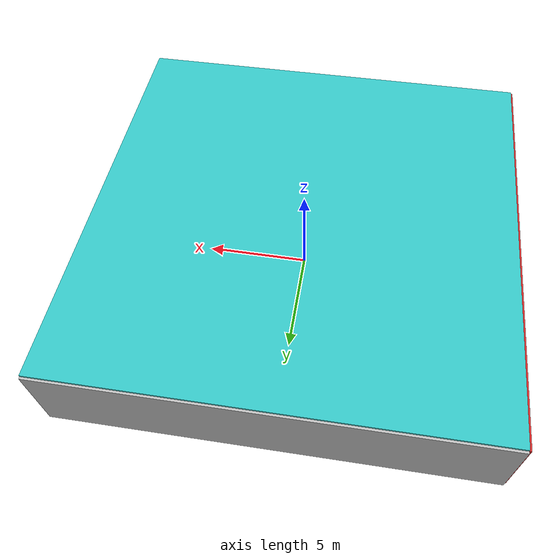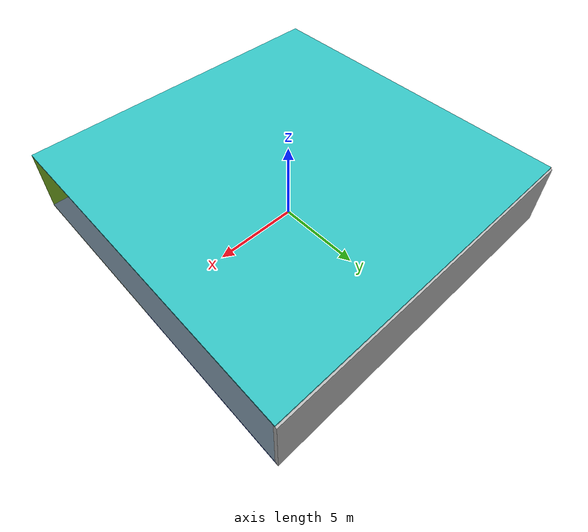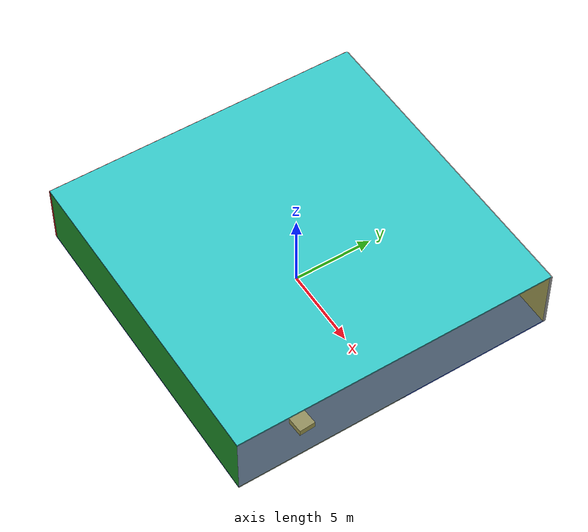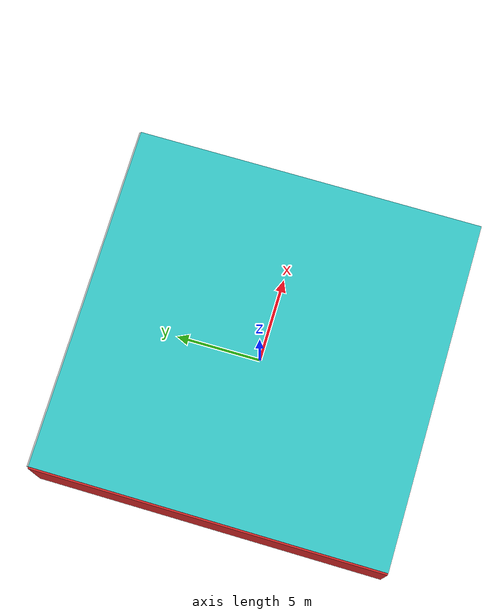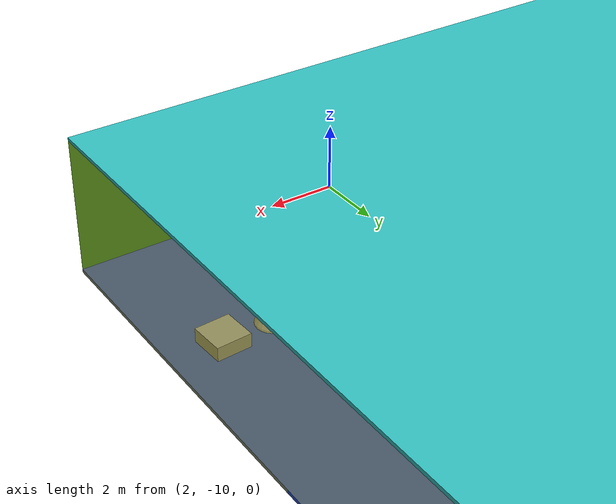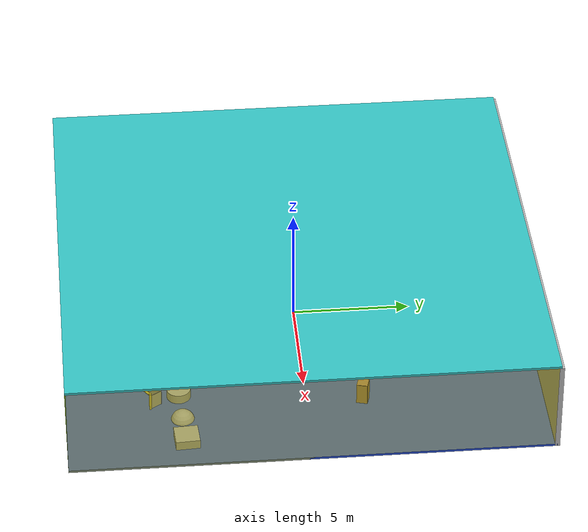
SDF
<sdf version="1.4">
 <world name="default">
  <physics type="ode">
   <max_step_size>0.001</max_step_size>
   <real_time_factor>1</real_time_factor>
   <real_time_update_rate>1000</real_time_update_rate>
   <gravity>0 0 -9.8</gravity>
  </physics>
  <scene><ambient>0.4 0.4 0.4 1</ambient><background>0.7 0.7 0.7 1</background><shadows>1</shadows></scene>
  <model name="Surrounding">
   <static>1</static>
   <link name="Ceiling">
    <collision name="Ceiling_Collision"><geometry><box><size>20 20 0.1</size></box></geometry></collision>
    <visual name="Ceiling_Visual">
     <geometry><box><size>20 20 0.1</size></box></geometry>
     <material>
      <script><uri>file://media/materials/scripts/gazebo.material</uri><name>Gazebo/Turquoise</name></script>
     </material>
    </visual>
    <pose>0 0 4.05 0 0 0</pose>
   </link>
   <link name="Wall_South">
    <collision name="Wall_South_Collision">
     <geometry><box><size>20 0 4</size></box></geometry>
     <pose>0 0 2 0 -0 0</pose>
    </collision>
    <visual name="Wall_South_Visual">
     <pose>0 0 2 0 -0 0</pose>
     <geometry><box><size>20 0 4</size></box></geometry>
     <material>
      <script><uri>file://media/materials/scripts/gazebo.material</uri><name>Gazebo/GreenGlow</name></script>
     </material>
    </visual>
    <velocity_decay><linear>0</linear><angular>0</angular></velocity_decay>
    <pose>0 -10 0 0 -0 0</pose>
   </link>
   <link name="Wall_East">
    <collision name="Wall_21_Collision">
     <geometry><box><size>20 0 4</size></box></geometry>
     <pose>0 0 2 0 -0 0</pose>
    </collision>
    <visual name="Wall_21_Visual">
     <pose>0 0 2 0 -0 0</pose>
     <geometry><box><size>20 0 4</size></box></geometry>
     <material>
      <script>
       <uri>file://media/materials/scripts/gazebo.material</uri>
       <name>Gazebo/YellowTransparent</name>
      </script>
     </material>
    </visual>
    <velocity_decay><linear>0</linear><angular>0</angular></velocity_decay>
    <pose>10 0 0 0 -0 1.5708</pose>
   </link>
   <link name="Wall_North">
    <collision name="Wall_22_Collision">
     <geometry><box><size>20 0.2 4</size></box></geometry>
     <pose>0 0 2 0 -0 0</pose>
    </collision>
    <visual name="Wall_22_Visual">
     <pose>0 0 2 0 -0 0</pose>
     <geometry><box><size>20 0.2 4</size></box></geometry>
     <material>
      <script><uri>file://media/materials/scripts/gazebo.material</uri><name>Gazebo/LightOn</name></script>
     </material>
    </visual>
    <velocity_decay><linear>0</linear><angular>0</angular></velocity_decay>
    <pose>0 10 0 0 -0 0</pose>
   </link>
   <link name="Wall_West">
    <collision name="Wall_23_Collision">
     <geometry><box><size>20 0.2 4</size></box></geometry>
     <pose>0 0 2 0 -0 0</pose>
    </collision>
    <visual name="Wall_23_Visual">
     <pose>0 0 2 0 -0 0</pose>
     <geometry><box><size>20 0.2 4</size></box></geometry>
     <material>
      <script><uri>file://media/materials/scripts/gazebo.material</uri><name>Gazebo/Red</name></script>
     </material>
    </visual>
    <velocity_decay><linear>0</linear><angular>0</angular></velocity_decay>
    <pose>-10 0 0 0 0 -1.5708</pose>
   </link>
   <link name="Ground_link">
    <collision name="collision">
     <pose>0 0 .05 0 -0 0</pose>
     <geometry><box><size>20 20 0.1</size></box></geometry>
    </collision>
    <visual name="visual">
     <pose>0 0 .05 0 -0 0</pose>
     <geometry><box><size>20 20 0.1</size></box></geometry>
     <material>
      <script><uri>file://media/materials/scripts/gazebo.material</uri><name>Gazebo/Blue</name></script>
     </material>
    </visual>
   </link>
   <static>1</static>
  </model>
  <spherical_coordinates>
   <surface_model>EARTH_WGS84</surface_model>
   <latitude_deg>0</latitude_deg>
   <longitude_deg>0</longitude_deg>
   <elevation>0</elevation>
   <heading_deg>0</heading_deg>
  </spherical_coordinates>
  <light name="lightball_0" type="diffuse">
   <diffuse>0.8 0.8 0.8 1</diffuse>
   <specular>0.2 0.2 0.2 1</specular>
   <attenuation>
    <range>100</range>
    <constant>0.7</constant>
    <linear>0.01</linear>
    <quadratic>0.001</quadratic>
   </attenuation>
   <direction>-0.5 0.1 -0.9</direction>
   <pose>7.08207665051 1.95722165217 1.79467727508 0 0 0</pose>
  </light>
  <light name="lightball_1" type="diffuse">
   <diffuse>0.8 0.8 0.8 1</diffuse>
   <specular>0.2 0.2 0.2 1</specular>
   <attenuation>
    <range>100</range>
    <constant>0.7</constant>
    <linear>0.01</linear>
    <quadratic>0.001</quadratic>
   </attenuation>
   <direction>-0.5 0.1 -0.9</direction>
   <pose>-9.79955944623 -2.70309823348 0.549113703388 0 0 0</pose>
  </light>
  <light name="lightball_2" type="diffuse">
   <diffuse>0.8 0.8 0.8 1</diffuse>
   <specular>0.2 0.2 0.2 1</specular>
   <attenuation>
    <range>100</range>
    <constant>0.7</constant>
    <linear>0.01</linear>
    <quadratic>0.001</quadratic>
   </attenuation>
   <direction>-0.5 0.1 -0.9</direction>
   <pose>-1.46362829467 -1.70916980784 1.21125068666 0 0 0</pose>
  </light>
  <light name="lightball_3" type="diffuse">
   <diffuse>0.8 0.8 0.8 1</diffuse>
   <specular>0.2 0.2 0.2 1</specular>
   <attenuation>
    <range>100</range>
    <constant>0.7</constant>
    <linear>0.01</linear>
    <quadratic>0.001</quadratic>
   </attenuation>
   <direction>-0.5 0.1 -0.9</direction>
   <pose>-6.45749384051 8.98145403188 2.73643296668 0 0 0</pose>
  </light>
  <light name="lightball_4" type="diffuse">
   <diffuse>0.8 0.8 0.8 1</diffuse>
   <specular>0.2 0.2 0.2 1</specular>
   <attenuation>
    <range>100</range>
    <constant>0.7</constant>
    <linear>0.01</linear>
    <quadratic>0.001</quadratic>
   </attenuation>
   <direction>-0.5 0.1 -0.9</direction>
   <pose>0.224920020482 -2.99451186482 1.15387971856 0 0 0</pose>
  </light>
  <light name="lightball_5" type="diffuse">
   <diffuse>0.8 0.8 0.8 1</diffuse>
   <specular>0.2 0.2 0.2 1</specular>
   <attenuation>
    <range>100</range>
    <constant>0.7</constant>
    <linear>0.01</linear>
    <quadratic>0.001</quadratic>
   </attenuation>
   <direction>-0.5 0.1 -0.9</direction>
   <pose>4.12868236445 -4.27110728957 1.37344007585 0 0 0</pose>
  </light>
  <light name="lightball_6" type="diffuse">
   <diffuse>0.8 0.8 0.8 1</diffuse>
   <specular>0.2 0.2 0.2 1</specular>
   <attenuation>
    <range>100</range>
    <constant>0.7</constant>
    <linear>0.01</linear>
    <quadratic>0.001</quadratic>
   </attenuation>
   <direction>-0.5 0.1 -0.9</direction>
   <pose>-0.311769106017 1.78805017317 2.70755806609 0 0 0</pose>
  </light>
  <light name="lightball_7" type="diffuse">
   <diffuse>0.8 0.8 0.8 1</diffuse>
   <specular>0.2 0.2 0.2 1</specular>
   <attenuation>
    <range>100</range>
    <constant>0.7</constant>
    <linear>0.01</linear>
    <quadratic>0.001</quadratic>
   </attenuation>
   <direction>-0.5 0.1 -0.9</direction>
   <pose>6.23422542966 9.51616015653 2.42321382274 0 0 0</pose>
  </light>
  <light name="lightball_8" type="diffuse">
   <diffuse>0.8 0.8 0.8 1</diffuse>
   <specular>0.2 0.2 0.2 1</specular>
   <attenuation>
    <range>100</range>
    <constant>0.7</constant>
    <linear>0.01</linear>
    <quadratic>0.001</quadratic>
   </attenuation>
   <direction>-0.5 0.1 -0.9</direction>
   <pose>-0.469496248069 8.63916270143 0.803405841919 0 0 0</pose>
  </light>
  <light name="lightball_9" type="diffuse">
   <diffuse>0.8 0.8 0.8 1</diffuse>
   <specular>0.2 0.2 0.2 1</specular>
   <attenuation>
    <range>100</range>
    <constant>0.7</constant>
    <linear>0.01</linear>
    <quadratic>0.001</quadratic>
   </attenuation>
   <direction>-0.5 0.1 -0.9</direction>
   <pose>-7.44078887759 -5.6901466415 1.16598958721 0 0 0</pose>
  </light>
  <light name="lightball_10" type="diffuse">
   <diffuse>0.8 0.8 0.8 1</diffuse>
   <specular>0.2 0.2 0.2 1</specular>
   <attenuation>
    <range>100</range>
    <constant>0.7</constant>
    <linear>0.01</linear>
    <quadratic>0.001</quadratic>
   </attenuation>
   <direction>-0.5 0.1 -0.9</direction>
   <pose>9.39039016121 2.43120167228 1.80301057743 0 0 0</pose>
  </light>
  <light name="lightball_11" type="diffuse">
   <diffuse>0.8 0.8 0.8 1</diffuse>
   <specular>0.2 0.2 0.2 1</specular>
   <attenuation>
    <range>100</range>
    <constant>0.7</constant>
    <linear>0.01</linear>
    <quadratic>0.001</quadratic>
   </attenuation>
   <direction>-0.5 0.1 -0.9</direction>
   <pose>-8.93501309914 -3.04518547666 2.6974045109 0 0 0</pose>
  </light>
  <light name="lightball_12" type="diffuse">
   <diffuse>0.8 0.8 0.8 1</diffuse>
   <specular>0.2 0.2 0.2 1</specular>
   <attenuation>
    <range>100</range>
    <constant>0.7</constant>
    <linear>0.01</linear>
    <quadratic>0.001</quadratic>
   </attenuation>
   <direction>-0.5 0.1 -0.9</direction>
   <pose>-9.23737731686 3.44621397384 1.68752628887 0 0 0</pose>
  </light>
  <light name="lightball_13" type="diffuse">
   <diffuse>0.8 0.8 0.8 1</diffuse>
   <specular>0.2 0.2 0.2 1</specular>
   <attenuation>
    <range>100</range>
    <constant>0.7</constant>
    <linear>0.01</linear>
    <quadratic>0.001</quadratic>
   </attenuation>
   <direction>-0.5 0.1 -0.9</direction>
   <pose>7.02600057653 -7.53378347598 1.58833568858 0 0 0</pose>
  </light>
  <include><uri>model://table</uri><pose>-4.6772899608 -3.32854359392 0 0 0 1.6548580095</pose></include>
  <include><uri>model://table</uri><pose>-2.14454021912 -7.11553163935 0 0 0 2.14152483925</pose></include>
  <include>
   <uri>model://robocup_3Dsim_goal</uri>
   <pose>5.41937036238 -7.0820274817 0 0 0 2.16839813345</pose>
  </include>
  <include>
   <uri>model://textured_shapes</uri>
   <pose>7.03764810618 -5.19733441548 0 0 0 1.62933596685</pose>
  </include>
  <include><uri>model://cabinet</uri><pose>6.41907921762 2.34988013076 0 0 0 1.30150766408</pose></include>
 </world>
</sdf>

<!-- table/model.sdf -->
<sdf version="1.5">
  <model name="table">
    <static>true</static>
    <link name="link">
      <collision name="surface">
        <pose>0 0 1.0 0 0 0</pose>
        <geometry>
          <box>
            <size>1.5 0.8 0.03</size>
          </box>
        </geometry>
        <surface>
          <friction>
            <ode>
              <mu>0.6</mu>
              <mu2>0.6</mu2>
            </ode>
          </friction>
        </surface>
      </collision>
      <visual name="visual1">
        <pose>0 0 1.0 0 0 0</pose>
        <geometry>
          <box>
            <size>1.5 0.8 0.03</size>
          </box>
        </geometry>
        <material>
          <script>
            <uri>model://media/materials/scripts/gazebo.material</uri>
            <name>Gazebo/Wood</name>
          </script>
        </material>
      </visual>
      <collision name="front_left_leg">
        <pose>0.68 0.38 0.5 0 0 0</pose>
        <geometry>
          <cylinder>
            <radius>0.02</radius>
            <length>1.0</length>
          </cylinder>
        </geometry>
      </collision>
      <visual name="front_left_leg">
        <pose>0.68 0.38 0.5 0 0 0</pose>
        <geometry>
          <cylinder>
            <radius>0.02</radius>
            <length>1.0</length>
          </cylinder>
        </geometry>
        <material>
          <script>
            <uri>model://media/materials/scripts/gazebo.material</uri>
            <name>Gazebo/Grey</name>
          </script>
        </material>
      </visual>
      <collision name="front_right_leg">
        <pose>0.68 -0.38 0.5 0 0 0</pose>
        <geometry>
          <cylinder>
            <radius>0.02</radius>
            <length>1.0</length>
          </cylinder>
        </geometry>
      </collision>
      <visual name="front_right_leg">
        <pose>0.68 -0.38 0.5 0 0 0</pose>
        <geometry>
          <cylinder>
            <radius>0.02</radius>
            <length>1.0</length>
          </cylinder>
        </geometry>
        <material>
          <script>
            <uri>model://media/materials/scripts/gazebo.material</uri>
            <name>Gazebo/Grey</name>
          </script>
        </material>
      </visual>
      <collision name="back_right_leg">
        <pose>-0.68 -0.38 0.5 0 0 0</pose>
        <geometry>
          <cylinder>
            <radius>0.02</radius>
            <length>1.0</length>
          </cylinder>
        </geometry>
      </collision>
      <visual name="back_right_leg">
        <pose>-0.68 -0.38 0.5 0 0 0</pose>
        <geometry>
          <cylinder>
            <radius>0.02</radius>
            <length>1.0</length>
          </cylinder>
        </geometry>
        <material>
          <script>
            <uri>model://media/materials/scripts/gazebo.material</uri>
            <name>Gazebo/Grey</name>
          </script>
        </material>
      </visual>
      <collision name="back_left_leg">
        <pose>-0.68 0.38 0.5 0 0 0</pose>
        <geometry>
          <cylinder>
            <radius>0.02</radius>
            <length>1.0</length>
          </cylinder>
        </geometry>
      </collision>
      <visual name="back_left_leg">
        <pose>-0.68 0.38 0.5 0 0 0</pose>
        <geometry>
          <cylinder>
            <radius>0.02</radius>
            <length>1.0</length>
          </cylinder>
        </geometry>
        <material>
          <script>
            <uri>model://media/materials/scripts/gazebo.material</uri>
            <name>Gazebo/Grey</name>
          </script>
        </material>
      </visual>
    </link>
  </model>
</sdf>

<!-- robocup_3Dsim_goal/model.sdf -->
<sdf version="1.5">
  <model name="robocup_3d_goal">
    <static>true</static>
    <link name="left_post">
      <pose>0 1.05 0.45 0 0 0</pose>
      <collision name="collision">
        <geometry>
          <cylinder>
            <radius>0.05</radius>
            <length>0.9</length>
          </cylinder>
        </geometry>
      </collision>
      <visual name="visual">
        <geometry>
          <cylinder>
            <radius>0.05</radius>
            <length>0.9</length>
          </cylinder>
        </geometry>
        <material>
          <script>
            <uri>file://media/materials/scripts/gazebo.material</uri>
            <name>Gazebo/ZincYellow</name>
          </script>
        </material>
      </visual>
    </link>
    <link name="left_support_horiz_lower">
      <pose>0.30 1.05 0.01 0 0 0</pose>
      <collision name="collision">
        <geometry>
          <box>
            <size>0.50 0.02 0.02</size>
          </box>
        </geometry>
      </collision>
      <visual name="visual">
        <geometry>
          <box>
            <size>0.50 0.02 0.02</size>
          </box>
        </geometry>
        <material>
          <script>
            <uri>file://media/materials/scripts/gazebo.material</uri>
            <name>Gazebo/White</name>
          </script>
        </material>
      </visual>
    </link>
    <link name="left_support_horiz_upper">
      <pose>0.30 1.05 0.79 0 0 0</pose>
      <collision name="collision">
        <geometry>
          <box>
            <size>0.50 0.02 0.02</size>
          </box>
        </geometry>
      </collision>
      <visual name="visual">
        <geometry>
          <box>
            <size>0.50 0.02 0.02</size>
          </box>
        </geometry>
        <material>
          <script>
            <uri>file://media/materials/scripts/gazebo.material</uri>
            <name>Gazebo/White</name>
          </script>
        </material>
      </visual>
    </link>
    <link name="left_support_vertical">
      <pose>0.56 1.05 0.4 0 1.5708 0</pose>
      <collision name="collision">
        <geometry>
          <box>
            <size>0.80 0.02 0.02</size>
          </box>
        </geometry>
      </collision>
      <visual name="visual">
        <geometry>
          <box>
            <size>0.80 0.02 0.02</size>
          </box>
        </geometry>
        <material>
          <script>
            <uri>file://media/materials/scripts/gazebo.material</uri>
            <name>Gazebo/White</name>
          </script>
        </material>
      </visual>
    </link>
    <link name="right_support_horiz_lower">
      <pose>0.30 -1.05 0.01 0 0 0</pose>
      <collision name="collision">
        <geometry>
          <box>
            <size>0.50 0.02 0.02</size>
          </box>
        </geometry>
      </collision>
      <visual name="visual">
        <geometry>
          <box>
            <size>0.50 0.02 0.02</size>
          </box>
        </geometry>
        <material>
          <script>
            <uri>file://media/materials/scripts/gazebo.material</uri>
            <name>Gazebo/White</name>
          </script>
        </material>
      </visual>
    </link>
    <link name="right_support_horiz_upper">
      <pose>0.30 -1.05 0.79 0 0 0</pose>
      <collision name="collision">
        <geometry>
          <box>
            <size>0.50 0.02 0.02</size>
          </box>
        </geometry>
      </collision>
      <visual name="visual">
        <geometry>
          <box>
            <size>0.50 0.02 0.02</size>
          </box>
        </geometry>
        <material>
          <script>
            <uri>file://media/materials/scripts/gazebo.material</uri>
            <name>Gazebo/White</name>
          </script>
        </material>
      </visual>
    </link>
    <link name="right_support_vertical">
      <pose>0.56 -1.05 0.4 0 1.5708 0</pose>
      <collision name="collision">
        <geometry>
          <box>
            <size>0.80 0.02 0.02</size>
          </box>
        </geometry>
      </collision>
      <visual name="visual">
        <geometry>
          <box>
            <size>0.80 0.02 0.02</size>
          </box>
        </geometry>
        <material>
          <script>
            <uri>file://media/materials/scripts/gazebo.material</uri>
            <name>Gazebo/White</name>
          </script>
        </material>
      </visual>
    </link>
    <link name="center_support_horiz_lower">
      <pose>0.56 0 0.01 0 1.5708 0</pose>
      <collision name="collision">
        <geometry>
          <box>
            <size>0.02 2.08 0.02</size>
          </box>
        </geometry>
      </collision>
      <visual name="visual">
        <geometry>
          <box>
            <size>0.02 2.08 0.02</size>
          </box>
        </geometry>
        <material>
          <script>
            <uri>file://media/materials/scripts/gazebo.material</uri>
            <name>Gazebo/White</name>
          </script>
        </material>
      </visual>
    </link>
    <link name="center_support_horiz_upper">
      <pose>0.56 0 0.79 0 1.5708 0</pose>
      <collision name="collision">
        <geometry>
          <box>
            <size>0.02 2.08 0.02</size>
          </box>
        </geometry>
      </collision>
      <visual name="visual">
        <geometry>
          <box>
            <size>0.02 2.08 0.02</size>
          </box>
        </geometry>
        <material>
          <script>
            <uri>file://media/materials/scripts/gazebo.material</uri>
            <name>Gazebo/White</name>
          </script>
        </material>
      </visual>
    </link>
    <link name="right_post">
      <pose>0 -1.05 0.45 0 0 0</pose>
      <collision name="collision">
        <geometry>
          <cylinder>
            <radius>0.05</radius>
            <length>0.9</length>
          </cylinder>
        </geometry>
      </collision>
      <visual name="visual">
        <geometry>
          <cylinder>
            <radius>0.05</radius>
            <length>0.9</length>
          </cylinder>
        </geometry>
        <material>
          <script>
            <uri>file://media/materials/scripts/gazebo.material</uri>
            <name>Gazebo/ZincYellow</name>
          </script>
        </material>
      </visual>
    </link>
    <link name="crossbar">
      <pose>0 0 0.85 1.57 1.57 0</pose>
      <collision name="collision">
        <geometry>
          <cylinder>
            <radius>0.05</radius>
            <length>2.0</length>
          </cylinder>
        </geometry>
      </collision>
      <visual name="visual">
        <geometry>
          <cylinder>
            <radius>0.05</radius>
            <length>2.0</length>
          </cylinder>
        </geometry>
        <material>
          <script>
            <uri>file://media/materials/scripts/gazebo.material</uri>
            <name>Gazebo/ZincYellow</name>
          </script>
        </material>
      </visual>
    </link>
    <link name="center_net">
      <pose>0.56 0 0.40 0 0 0</pose>
      <collision name="collision">
        <geometry>
          <box>
            <size>0.01 2.1 0.80</size>
          </box>
        </geometry>
      </collision>
      <visual name="visual">
        <geometry>
          <box>
            <size>0.01 2.1 0.80</size>
          </box>
        </geometry>
        <material>
          <script>
            <uri>model://../model_source/models/robocup09_spl_field/materials/scripts/</uri>
            <uri>model://../model_source/models/robocup09_spl_field/materials/textures/</uri>
            <name>RoboCup/Net</name>
          </script>
        </material>
      </visual>
    </link>
    <link name="left_net">
      <pose>0.30 1.05 0.40 0 0 0</pose>
      <collision name="collision">
        <geometry>
          <box>
            <size>0.50 0.01 0.76</size>
          </box>
        </geometry>
      </collision>
      <visual name="visual">
        <geometry>
          <box>
            <size>0.50 0.01 0.76</size>
          </box>
        </geometry>
        <material>
          <script>
            <uri>model://../model_source/models/robocup09_spl_field/materials/scripts/</uri>
            <uri>model://../model_source/models/robocup09_spl_field/materials/textures/</uri>
            <name>RoboCup/Net</name>
          </script>
        </material>
      </visual>
    </link>
    <link name="right_net">
      <pose>0.30 -1.05 0.40 0 0 0</pose>
      <collision name="collision">
        <geometry>
          <box>
            <size>0.50 0.01 0.76</size>
          </box>
        </geometry>
      </collision>
      <visual name="visual">
        <geometry>
          <box>
            <size>0.50 0.01 0.76</size>
          </box>
        </geometry>
        <material>
          <script>
            <uri>model://../model_source/models/robocup09_spl_field/materials/scripts/</uri>
            <uri>model://../model_source/models/robocup09_spl_field/materials/textures/</uri>
            <name>RoboCup/Net</name>
          </script>
        </material>
      </visual>
    </link>
  </model>
</sdf>

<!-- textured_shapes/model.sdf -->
<sdf version="1.6">
  <model name="textured_shapes">
    <pose>0 0 0.5 0 0 0</pose>
    <link name="box">
      <pose>0 -1.5 0 0 0 0</pose>
      <collision name="collision">
        <geometry>
          <box>
            <size>1 1 1</size>
          </box>
        </geometry>
      </collision>
      <visual name="visual">
        <geometry>
          <box>
            <size>1 1 1</size>
          </box>
        </geometry>
        <material>
          <script>
            <uri>model://../model_source/models/textured_shapes/materials/scripts</uri>
            <uri>model://../model_source/models/textured_shapes/materials/textures</uri>
            <name>TexturedShape/Squares</name>
          </script>
        </material>
      </visual>
    </link>
    <link name="sphere">
      <collision name="collision">
        <geometry>
          <sphere>
            <radius>0.5</radius>
          </sphere>
        </geometry>
      </collision>
      <visual name="visual">
        <geometry>
          <sphere>
            <radius>0.5</radius>
          </sphere>
        </geometry>
        <material>
          <script>
            <uri>model://../model_source/models/textured_shapes/materials/scripts</uri>
            <uri>model://../model_source/models/textured_shapes/materials/textures</uri>
            <name>TexturedShape/Squares</name>
          </script>
        </material>
      </visual>
    </link>
    <link name="cylinder">
      <pose>0 1.5 0 0 0 0</pose>
      <collision name="collision">
        <geometry>
          <cylinder>
            <radius>0.5</radius>
            <length>1</length>
          </cylinder>
        </geometry>
      </collision>
      <visual name="visual">
        <geometry>
          <cylinder>
            <radius>0.5</radius>
            <length>1</length>
          </cylinder>
        </geometry>
        <material>
          <script>
            <uri>model://../model_source/models/textured_shapes/materials/scripts</uri>
            <uri>model://../model_source/models/textured_shapes/materials/textures</uri>
            <name>TexturedShape/Squares</name>
          </script>
        </material>
      </visual>
    </link>
  </model>
</sdf>

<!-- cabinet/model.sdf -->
<sdf version="1.5">
  <model name="cabinet">
    <static>true</static>
    <link name="cabinet_bottom_plate">
      <inertial>
        <pose>0 0 -1 0 0 0</pose>
        <inertia>
          <ixx>2.050000</ixx>
          <ixy>0</ixy>
          <ixz>0</ixz>
          <iyy>2.050000</iyy>
          <iyz>0</iyz>
          <izz>2.050000</izz>
        </inertia>
        <mass>25.000000</mass>
      </inertial>
      <collision name="cabinet_bottom_plate_geom">
        <pose>0 0 0.010000 0 0 0</pose>
        <geometry>
          <box>
            <size>0.450000 0.450000 0.020000</size>
          </box>
        </geometry>
      </collision>
      <visual name="cabinet_bottom_plate_geom_visual">
        <pose>0 0 0.010000 0 0 0</pose>
        <geometry>
          <box>
            <size>0.450000 0.450000 0.020000</size>
          </box>
        </geometry>
        <material>
          <script>
            <uri>model://media/materials/scripts/gazebo.material</uri>
            <name>Gazebo/Wood</name>
          </script>
        </material>
      </visual>
      <collision name="cabinet_bottom_plate_geom_cabinet_back_plate">
        <pose>0.235000 0 0.510000 0 0 0</pose>
        <geometry>
          <box>
            <size>0.020000 0.450000 1.020000</size>
          </box>
        </geometry>
      </collision>
      <visual name="cabinet_bottom_plate_geom_cabinet_back_plate_visual">
        <pose>0.235000 0 0.510000 0 0 0</pose>
        <geometry>
          <box>
            <size>0.020000 0.450000 1.020000</size>
          </box>
        </geometry>
        <material>
          <script>
            <uri>model://media/materials/scripts/gazebo.material</uri>
            <name>Gazebo/Wood</name>
          </script>
        </material>
      </visual>
      <collision name="cabinet_bottom_plate_geom_cabinet_left_plate">
        <pose>0 0.235000 0.510000 0 0 0</pose>
        <geometry>
          <box>
            <size>0.450000 0.020000 1.020000</size>
          </box>
        </geometry>
      </collision>
      <visual name="cabinet_bottom_plate_geom_cabinet_left_plate_visual">
        <pose>0 0.235000 0.510000 0 0 0</pose>
        <geometry>
          <box>
            <size>0.450000 0.020000 1.020000</size>
          </box>
        </geometry>
        <material>
          <script>
            <uri>model://media/materials/scripts/gazebo.material</uri>
            <name>Gazebo/Wood</name>
          </script>
        </material>
      </visual>
      <collision name="cabinet_bottom_plate_geom_cabinet_middle_plate">
        <pose>0 0 0.510000 0 0 0</pose>
        <geometry>
          <box>
            <size>0.450000 0.450000 0.020000</size>
          </box>
        </geometry>
      </collision>
      <visual name="cabinet_bottom_plate_geom_cabinet_middle_plate_visual">
        <pose>0 0 0.510000 0 0 0</pose>
        <geometry>
          <box>
            <size>0.450000 0.450000 0.020000</size>
          </box>
        </geometry>
        <material>
          <script>
            <uri>model://media/materials/scripts/gazebo.material</uri>
            <name>Gazebo/Wood</name>
          </script>
        </material>
      </visual>
      <collision name="cabinet_bottom_plate_geom_cabinet_right_plate">
        <pose>0 -0.235000 0.510000 0 0 0</pose>
        <geometry>
          <box>
            <size>0.450000 0.020000 1.020000</size>
          </box>
        </geometry>
      </collision>
      <visual name="cabinet_bottom_plate_geom_cabinet_right_plate_visual">
        <pose>0 -0.235000 0.510000 0 0 0</pose>
        <geometry>
          <box>
            <size>0.450000 0.020000 1.020000</size>
          </box>
        </geometry>
        <material>
          <script>
            <uri>model://media/materials/scripts/gazebo.material</uri>
            <name>Gazebo/Wood</name>
          </script>
        </material>
      </visual>
      <collision name="cabinet_bottom_plate_geom_cabinet_top_plate">
        <pose>0 0 1.010000 0 0 0</pose>
        <geometry>
          <box>
            <size>0.450000 0.450000 0.020000</size>
          </box>
        </geometry>
      </collision>
      <visual name="cabinet_bottom_plate_geom_cabinet_top_plate_visual">
        <pose>0 0 1.010000 0 0 0</pose>
        <geometry>
          <box>
            <size>0.450000 0.450000 0.020000</size>
          </box>
        </geometry>
        <material>
          <script>
            <uri>model://media/materials/scripts/gazebo.material</uri>
            <name>Gazebo/Wood</name>
          </script>
        </material>
      </visual>
    </link>
  </model>
</sdf>
